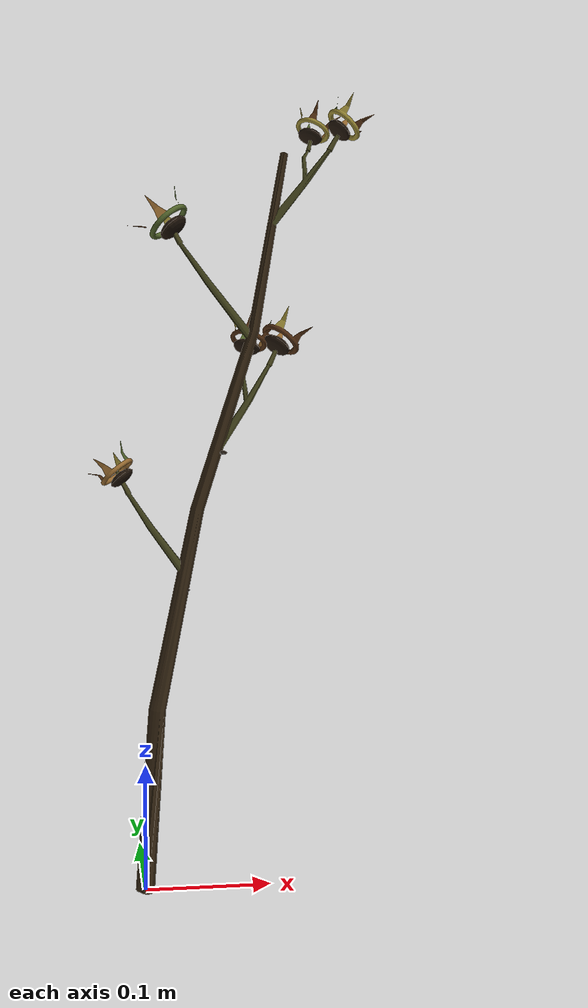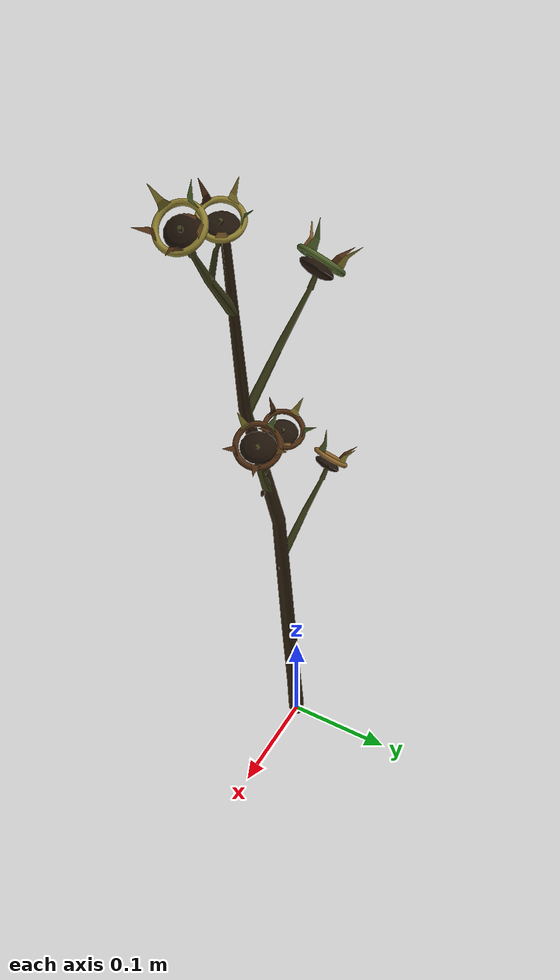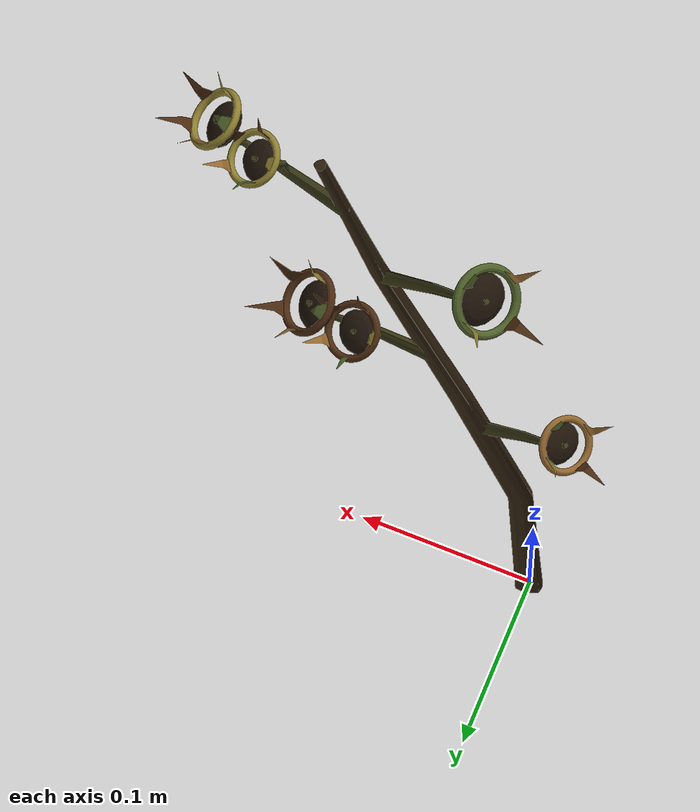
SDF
<?xml version="1.0"?>
<sdf version="1.7">
  <model name="branch_variant_A_mature_white_01">
    <static>true</static>
    <link name="branch_variant_A_mature_white_01_link">
      <visual name="branch_variant_A_mature_white_01_visual">
        <geometry><mesh><uri>model://branch_variant_A_mature_white_01/meshes/branch_variant_A_mature_white_01.dae</uri></mesh></geometry>
      </visual>
      <collision name="branch_variant_A_mature_white_01_stem_collision">
        <pose>0 0 0.29000 0 0 0</pose>
        <geometry><cylinder><radius>0.018</radius><length>0.58000</length></cylinder></geometry>
      </collision>
    </link>
  </model>
</sdf>
